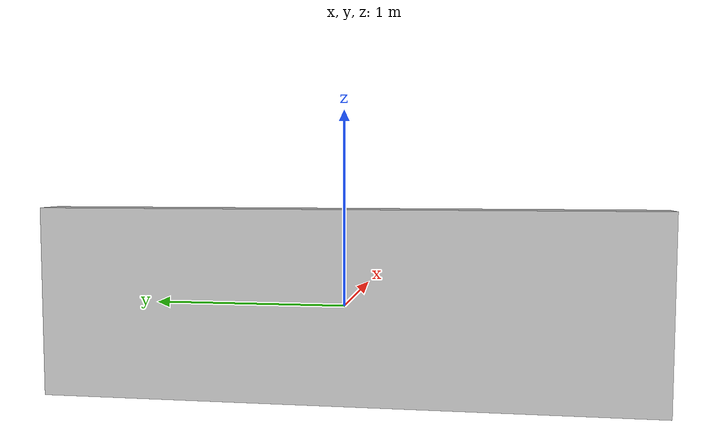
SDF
<?xml version='1.0'?>
<sdf version='1.6'>
  <model name='room_4_wall_left'>
    <static>true</static>
    <link name='link'>
      <collision name='collision'>
        <pose>0 0 0 0 0 0</pose>
        <geometry>
          <box>
            <size>0.2 3.21 1.0</size>
          </box>
        </geometry>
      </collision>
      <visual name='visual'>
        <pose>0 0 0 0 0 0</pose>
        <geometry>
          <box>
            <size>0.2 3.21 1.0</size>
          </box>
        </geometry>
      </visual>
    </link>
  </model>
</sdf>
